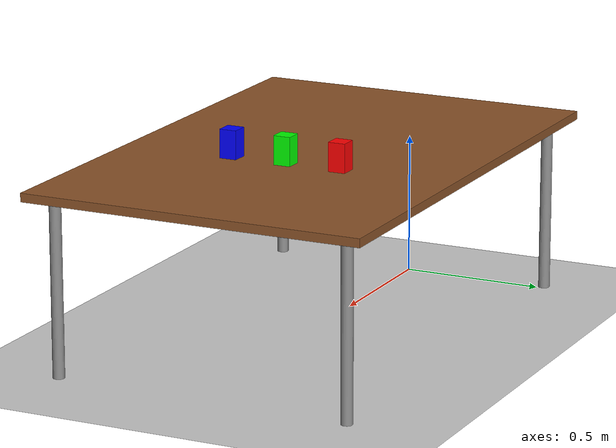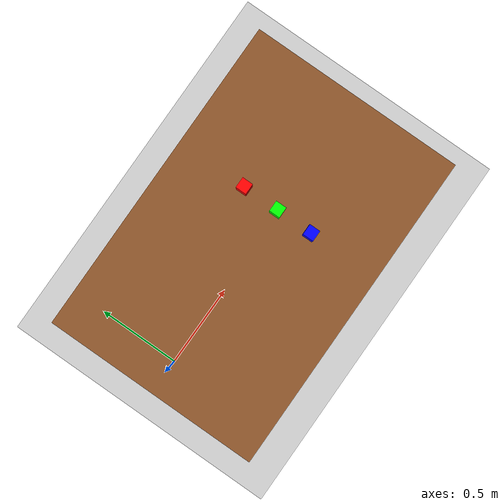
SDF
<?xml version='1.0'?>
<sdf version='1.9'>
  <world name='empty_world'>

    <gravity>0 0 -9.8</gravity>
    <magnetic_field>6e-06 2.3e-05 -4.2e-05</magnetic_field>
    <atmosphere type='adiabatic'/>

    <plugin filename="gz-sim-scene-broadcaster-system" name="gz::sim::systems::SceneBroadcaster"/>
    <plugin filename="gz-sim-physics-system" name="gz::sim::systems::Physics"/>
    <plugin filename="gz-sim-user-commands-system" name="gz::sim::systems::UserCommands"/>

    <physics type='ode'>
      <max_step_size>0.001</max_step_size>
      <real_time_factor>1</real_time_factor>
      <real_time_update_rate>1000</real_time_update_rate>
    </physics>

    <scene>
      <ambient>0.4 0.4 0.4 1</ambient>
      <background>0.7 0.7 0.7 1</background>
      <shadows>true</shadows>
    </scene>

    <light name='sun' type='directional'>
      <pose>0 0 10 0 0 0</pose>
      <cast_shadows>true</cast_shadows>
      <intensity>1.0</intensity>
      <direction>-0.5 0.1 -0.9</direction>
      <diffuse>0.8 0.8 0.8 1</diffuse>
      <specular>0.2 0.2 0.2 1</specular>
      <attenuation>
        <range>1000</range>
        <linear>0.01</linear>
        <constant>0.9</constant>
        <quadratic>0.001</quadratic>
      </attenuation>
    </light>

    <model name='ground_plane'>
      <static>true</static>
      <link name='link'>
        <collision name='collision'>
          <geometry>
            <plane>
              <normal>0 0 1</normal>
              <size>100 100</size>
            </plane>
          </geometry>
        </collision>
        <visual name='visual'>
          <geometry>
            <plane>
              <normal>0 0 1</normal>
              <size>100 100</size>
            </plane>
          </geometry>
          <material>
            <ambient>0.8 0.8 0.8 1</ambient>
            <diffuse>0.8 0.8 0.8 1</diffuse>
            <specular>0.8 0.8 0.8 1</specular>
          </material>
        </visual>
      </link>
    </model>

    <include>
      <uri>file:///home/asus/ros2_panda_ws/install/panda_description/share/panda_description/worlds/arm_on_the_table.sdf</uri>
      <pose>0.80 0 0 0 0 0</pose>
    </include>

    <model name="red_box">
      <static>false</static>
      <pose>1.0 0.2 0.685 0 0 0</pose>
      <link name="red_link">
        <inertial>
          <mass>0.15</mass>
          <inertia>
            <ixx>0.0002</ixx>
            <iyy>0.0002</iyy>
            <izz>0.0002</izz>
            <ixy>0</ixy>
            <ixz>0</ixz>
            <iyz>0</iyz>
          </inertia>
        </inertial>
        <collision name="red_collision">
          <geometry>
            <box>
              <size>0.06 0.06 0.10</size>
            </box>
          </geometry>
        </collision>
        <visual name="red_visual">
          <geometry>
            <box>
              <size>0.06 0.06 0.10</size>
            </box>
          </geometry>
          <material>
            <ambient>1 0 0 1</ambient>
            <diffuse>1 0 0 1</diffuse>
          </material>
        </visual>
      </link>
    </model>

    <model name="green_box">
      <static>false</static>
      <pose>1.0 0.0 0.685 0 0 0</pose>
      <link name="green_link">
        <inertial>
          <mass>0.15</mass>
          <inertia>
            <ixx>0.0002</ixx>
            <iyy>0.0002</iyy>
            <izz>0.0002</izz>
            <ixy>0</ixy>
            <ixz>0</ixz>
            <iyz>0</iyz>
          </inertia>
        </inertial>
        <collision name="green_collision">
          <geometry>
            <box>
              <size>0.06 0.06 0.10</size>
            </box>
          </geometry>
        </collision>
        <visual name="green_visual">
          <geometry>
            <box>
              <size>0.06 0.06 0.10</size>
            </box>
          </geometry>
          <material>
            <ambient>0 1 0 1</ambient>
            <diffuse>0 1 0 1</diffuse>
          </material>
        </visual>
      </link>
    </model>

    <model name="blue_box">
      <static>false</static>
      <pose>1.0 -0.2 0.685 0 0 0</pose>
      <link name="blue_link">
        <inertial>
          <mass>0.15</mass>
          <inertia>
            <ixx>0.0002</ixx>
            <iyy>0.0002</iyy>
            <izz>0.0002</izz>
            <ixy>0</ixy>
            <ixz>0</ixz>
            <iyz>0</iyz>
          </inertia>
        </inertial>
        <collision name="blue_collision">
          <geometry>
            <box>
              <size>0.06 0.06 0.10</size>
            </box>
          </geometry>
        </collision>
        <visual name="blue_visual">
          <geometry>
            <box>
              <size>0.06 0.06 0.10</size>
            </box>
          </geometry>
          <material>
            <ambient>0 0 1 1</ambient>
            <diffuse>0 0 1 1</diffuse>
          </material>
        </visual>
      </link>
    </model>

  </world>
</sdf>

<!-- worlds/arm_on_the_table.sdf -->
<sdf version="1.9">
  <model name="arm_on_the_table">
    <static>true</static>
    <pose>0 0 0 0 0 0</pose>

    <link name="table_link">

      <!-- Mặt bàn -->
      <collision name="table_surface_collision">
        <pose>0 0 0.62 0 0 0</pose>
        <geometry>
          <box>
            <size>1.8 1.2 0.03</size>
          </box>
        </geometry>
        <surface>
          <friction>
            <ode>
              <mu>0.8</mu>
              <mu2>0.8</mu2>
            </ode>
          </friction>
        </surface>
      </collision>

      <visual name="table_surface_visual">
        <pose>0 0 0.62 0 0 0</pose>
        <geometry>
          <box>
            <size>1.8 1.2 0.03</size>
          </box>
        </geometry>
        <material>
          <ambient>0.42 0.25 0.12 1</ambient>
          <diffuse>0.55 0.33 0.16 1</diffuse>
          <specular>0.10 0.10 0.10 1</specular>
        </material>
      </visual>

      <!-- Chân bàn 1 -->
      <collision name="leg1_collision">
        <pose>0.82 0.52 0.3025 0 0 0</pose>
        <geometry>
          <cylinder>
            <radius>0.02</radius>
            <length>0.605</length>
          </cylinder>
        </geometry>
      </collision>
      <visual name="leg1_visual">
        <pose>0.82 0.52 0.3025 0 0 0</pose>
        <geometry>
          <cylinder>
            <radius>0.02</radius>
            <length>0.605</length>
          </cylinder>
        </geometry>
        <material>
          <ambient>0.50 0.50 0.50 1</ambient>
          <diffuse>0.55 0.55 0.55 1</diffuse>
          <specular>0.08 0.08 0.08 1</specular>
        </material>
      </visual>

      <!-- Chân bàn 2 -->
      <collision name="leg2_collision">
        <pose>0.82 -0.52 0.3025 0 0 0</pose>
        <geometry>
          <cylinder>
            <radius>0.02</radius>
            <length>0.605</length>
          </cylinder>
        </geometry>
      </collision>
      <visual name="leg2_visual">
        <pose>0.82 -0.52 0.3025 0 0 0</pose>
        <geometry>
          <cylinder>
            <radius>0.02</radius>
            <length>0.605</length>
          </cylinder>
        </geometry>
        <material>
          <ambient>0.50 0.50 0.50 1</ambient>
          <diffuse>0.55 0.55 0.55 1</diffuse>
          <specular>0.08 0.08 0.08 1</specular>
        </material>
      </visual>

      <!-- Chân bàn 3 -->
      <collision name="leg3_collision">
        <pose>-0.82 -0.52 0.3025 0 0 0</pose>
        <geometry>
          <cylinder>
            <radius>0.02</radius>
            <length>0.605</length>
          </cylinder>
        </geometry>
      </collision>
      <visual name="leg3_visual">
        <pose>-0.82 -0.52 0.3025 0 0 0</pose>
        <geometry>
          <cylinder>
            <radius>0.02</radius>
            <length>0.605</length>
          </cylinder>
        </geometry>
        <material>
          <ambient>0.50 0.50 0.50 1</ambient>
          <diffuse>0.55 0.55 0.55 1</diffuse>
          <specular>0.08 0.08 0.08 1</specular>
        </material>
      </visual>

      <!-- Chân bàn 4 -->
      <collision name="leg4_collision">
        <pose>-0.82 0.52 0.3025 0 0 0</pose>
        <geometry>
          <cylinder>
            <radius>0.02</radius>
            <length>0.605</length>
          </cylinder>
        </geometry>
      </collision>
      <visual name="leg4_visual">
        <pose>-0.82 0.52 0.3025 0 0 0</pose>
        <geometry>
          <cylinder>
            <radius>0.02</radius>
            <length>0.605</length>
          </cylinder>
        </geometry>
        <material>
          <ambient>0.50 0.50 0.50 1</ambient>
          <diffuse>0.55 0.55 0.55 1</diffuse>
          <specular>0.08 0.08 0.08 1</specular>
        </material>
      </visual>

    </link>
  </model>
</sdf>
